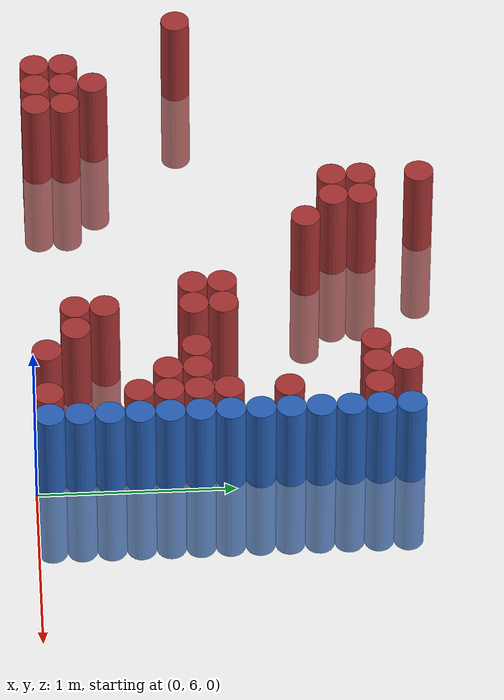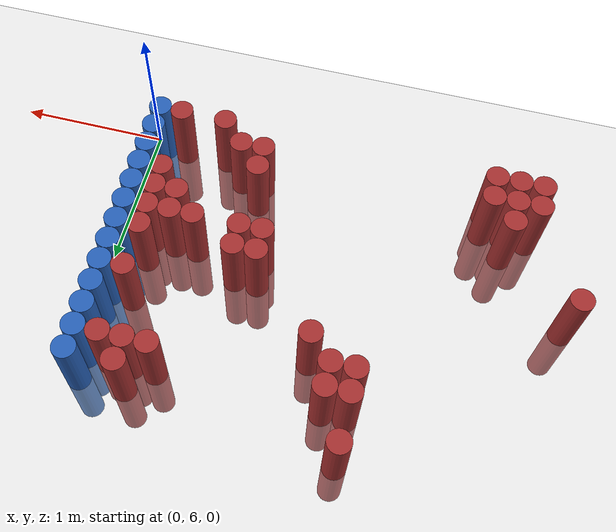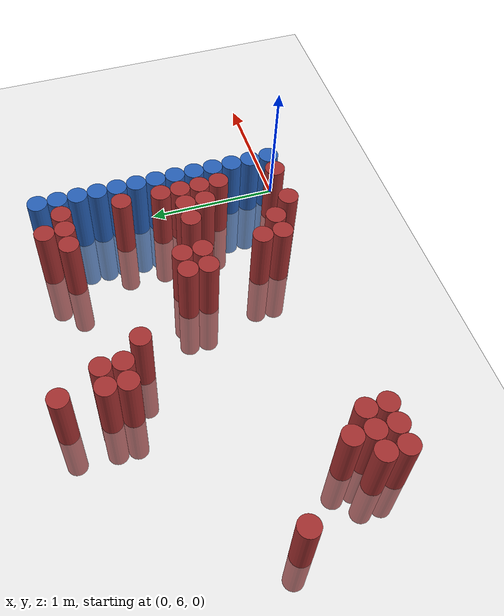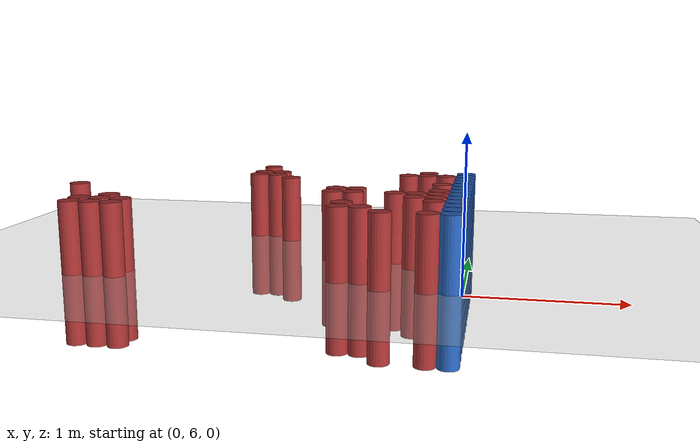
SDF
<sdf version="1.6">
 <world name="default">
  <model name="ground_plane">
   <static>1</static>
   <link name="link">
    <collision name="collision">
     <geometry><plane><normal>0 0 1</normal><size>100 100</size></plane></geometry>
     <surface><friction><ode><mu>100</mu><mu2>50</mu2></ode></friction></surface>
    </collision>
    <visual name="visual">
     <cast_shadows>0</cast_shadows>
     <geometry><plane><normal>0 0 1</normal><size>100 100</size></plane></geometry>
     <material>
      <script><uri>file://media/materials/scripts/gazebo.material</uri><name>Gazebo/Grey</name></script>
     </material>
    </visual>
   </link>
  </model>
  <model name="unit_cylinder_169">
   <static>1</static>
   <pose>-2.925000 6.825000 0.000000 0.000000 0.000000 0.000000</pose>
   <link name="link">
    <inertial>
     <mass>1</mass>
     <inertia><ixx>0.145833</ixx><ixy>0</ixy><ixz>0</ixz><iyy>0.145833</iyy><iyz>0</iyz><izz>0.125</izz></inertia>
    </inertial>
    <collision name="collision">
     <geometry><cylinder><radius>0.075000</radius><length>1</length></cylinder></geometry>
    </collision>
    <visual name="visual">
     <geometry><cylinder><radius>0.075000</radius><length>1</length></cylinder></geometry>
     <material>
      <ambient>0.648000 0.192000 0.192000 1</ambient>
      <diffuse>0.648000 0.192000 0.192000 1</diffuse>
     </material>
     <material>
      <script><name>Gazebo/Grey</name><uri>file://media/materials/scripts/gazebo.material</uri></script>
     </material>
    </visual>
   </link>
  </model>
  <model name="unit_cylinder_174">
   <static>1</static>
   <pose>-2.625000 6.075000 0.000000 0.000000 0.000000 0.000000</pose>
   <link name="link">
    <inertial>
     <mass>1</mass>
     <inertia><ixx>0.145833</ixx><ixy>0</ixy><ixz>0</ixz><iyy>0.145833</iyy><iyz>0</iyz><izz>0.125</izz></inertia>
    </inertial>
    <collision name="collision">
     <geometry><cylinder><radius>0.075000</radius><length>1</length></cylinder></geometry>
    </collision>
    <visual name="visual">
     <geometry><cylinder><radius>0.075000</radius><length>1</length></cylinder></geometry>
     <material>
      <ambient>0.648000 0.192000 0.192000 1</ambient>
      <diffuse>0.648000 0.192000 0.192000 1</diffuse>
     </material>
     <material>
      <script><name>Gazebo/Grey</name><uri>file://media/materials/scripts/gazebo.material</uri></script>
     </material>
    </visual>
   </link>
  </model>
  <model name="unit_cylinder_175">
   <static>1</static>
   <pose>-2.625000 6.225000 0.000000 0.000000 0.000000 0.000000</pose>
   <link name="link">
    <inertial>
     <mass>1</mass>
     <inertia><ixx>0.145833</ixx><ixy>0</ixy><ixz>0</ixz><iyy>0.145833</iyy><iyz>0</iyz><izz>0.125</izz></inertia>
    </inertial>
    <collision name="collision">
     <geometry><cylinder><radius>0.075000</radius><length>1</length></cylinder></geometry>
    </collision>
    <visual name="visual">
     <geometry><cylinder><radius>0.075000</radius><length>1</length></cylinder></geometry>
     <material>
      <ambient>0.648000 0.192000 0.192000 1</ambient>
      <diffuse>0.648000 0.192000 0.192000 1</diffuse>
     </material>
     <material>
      <script><name>Gazebo/Grey</name><uri>file://media/materials/scripts/gazebo.material</uri></script>
     </material>
    </visual>
   </link>
  </model>
  <model name="unit_cylinder_176">
   <static>1</static>
   <pose>-2.475000 6.075000 0.000000 0.000000 0.000000 0.000000</pose>
   <link name="link">
    <inertial>
     <mass>1</mass>
     <inertia><ixx>0.145833</ixx><ixy>0</ixy><ixz>0</ixz><iyy>0.145833</iyy><iyz>0</iyz><izz>0.125</izz></inertia>
    </inertial>
    <collision name="collision">
     <geometry><cylinder><radius>0.075000</radius><length>1</length></cylinder></geometry>
    </collision>
    <visual name="visual">
     <geometry><cylinder><radius>0.075000</radius><length>1</length></cylinder></geometry>
     <material>
      <ambient>0.648000 0.192000 0.192000 1</ambient>
      <diffuse>0.648000 0.192000 0.192000 1</diffuse>
     </material>
     <material>
      <script><name>Gazebo/Grey</name><uri>file://media/materials/scripts/gazebo.material</uri></script>
     </material>
    </visual>
   </link>
  </model>
  <model name="unit_cylinder_177">
   <static>1</static>
   <pose>-2.475000 6.225000 0.000000 0.000000 0.000000 0.000000</pose>
   <link name="link">
    <inertial>
     <mass>1</mass>
     <inertia><ixx>0.145833</ixx><ixy>0</ixy><ixz>0</ixz><iyy>0.145833</iyy><iyz>0</iyz><izz>0.125</izz></inertia>
    </inertial>
    <collision name="collision">
     <geometry><cylinder><radius>0.075000</radius><length>1</length></cylinder></geometry>
    </collision>
    <visual name="visual">
     <geometry><cylinder><radius>0.075000</radius><length>1</length></cylinder></geometry>
     <material>
      <ambient>0.648000 0.192000 0.192000 1</ambient>
      <diffuse>0.648000 0.192000 0.192000 1</diffuse>
     </material>
     <material>
      <script><name>Gazebo/Grey</name><uri>file://media/materials/scripts/gazebo.material</uri></script>
     </material>
    </visual>
   </link>
  </model>
  <model name="unit_cylinder_178">
   <static>1</static>
   <pose>-2.475000 6.375000 0.000000 0.000000 0.000000 0.000000</pose>
   <link name="link">
    <inertial>
     <mass>1</mass>
     <inertia><ixx>0.145833</ixx><ixy>0</ixy><ixz>0</ixz><iyy>0.145833</iyy><iyz>0</iyz><izz>0.125</izz></inertia>
    </inertial>
    <collision name="collision">
     <geometry><cylinder><radius>0.075000</radius><length>1</length></cylinder></geometry>
    </collision>
    <visual name="visual">
     <geometry><cylinder><radius>0.075000</radius><length>1</length></cylinder></geometry>
     <material>
      <ambient>0.648000 0.192000 0.192000 1</ambient>
      <diffuse>0.648000 0.192000 0.192000 1</diffuse>
     </material>
     <material>
      <script><name>Gazebo/Grey</name><uri>file://media/materials/scripts/gazebo.material</uri></script>
     </material>
    </visual>
   </link>
  </model>
  <model name="unit_cylinder_179">
   <static>1</static>
   <pose>-2.325000 6.075000 0.000000 0.000000 0.000000 0.000000</pose>
   <link name="link">
    <inertial>
     <mass>1</mass>
     <inertia><ixx>0.145833</ixx><ixy>0</ixy><ixz>0</ixz><iyy>0.145833</iyy><iyz>0</iyz><izz>0.125</izz></inertia>
    </inertial>
    <collision name="collision">
     <geometry><cylinder><radius>0.075000</radius><length>1</length></cylinder></geometry>
    </collision>
    <visual name="visual">
     <geometry><cylinder><radius>0.075000</radius><length>1</length></cylinder></geometry>
     <material>
      <ambient>0.648000 0.192000 0.192000 1</ambient>
      <diffuse>0.648000 0.192000 0.192000 1</diffuse>
     </material>
     <material>
      <script><name>Gazebo/Grey</name><uri>file://media/materials/scripts/gazebo.material</uri></script>
     </material>
    </visual>
   </link>
  </model>
  <model name="unit_cylinder_180">
   <static>1</static>
   <pose>-2.325000 6.225000 0.000000 0.000000 0.000000 0.000000</pose>
   <link name="link">
    <inertial>
     <mass>1</mass>
     <inertia><ixx>0.145833</ixx><ixy>0</ixy><ixz>0</ixz><iyy>0.145833</iyy><iyz>0</iyz><izz>0.125</izz></inertia>
    </inertial>
    <collision name="collision">
     <geometry><cylinder><radius>0.075000</radius><length>1</length></cylinder></geometry>
    </collision>
    <visual name="visual">
     <geometry><cylinder><radius>0.075000</radius><length>1</length></cylinder></geometry>
     <material>
      <ambient>0.648000 0.192000 0.192000 1</ambient>
      <diffuse>0.648000 0.192000 0.192000 1</diffuse>
     </material>
     <material>
      <script><name>Gazebo/Grey</name><uri>file://media/materials/scripts/gazebo.material</uri></script>
     </material>
    </visual>
   </link>
  </model>
  <model name="unit_cylinder_192">
   <static>1</static>
   <pose>-1.725000 7.575000 0.000000 0.000000 0.000000 0.000000</pose>
   <link name="link">
    <inertial>
     <mass>1</mass>
     <inertia><ixx>0.145833</ixx><ixy>0</ixy><ixz>0</ixz><iyy>0.145833</iyy><iyz>0</iyz><izz>0.125</izz></inertia>
    </inertial>
    <collision name="collision">
     <geometry><cylinder><radius>0.075000</radius><length>1</length></cylinder></geometry>
    </collision>
    <visual name="visual">
     <geometry><cylinder><radius>0.075000</radius><length>1</length></cylinder></geometry>
     <material>
      <ambient>0.648000 0.192000 0.192000 1</ambient>
      <diffuse>0.648000 0.192000 0.192000 1</diffuse>
     </material>
     <material>
      <script><name>Gazebo/Grey</name><uri>file://media/materials/scripts/gazebo.material</uri></script>
     </material>
    </visual>
   </link>
  </model>
  <model name="unit_cylinder_193">
   <static>1</static>
   <pose>-1.725000 7.725000 0.000000 0.000000 0.000000 0.000000</pose>
   <link name="link">
    <inertial>
     <mass>1</mass>
     <inertia><ixx>0.145833</ixx><ixy>0</ixy><ixz>0</ixz><iyy>0.145833</iyy><iyz>0</iyz><izz>0.125</izz></inertia>
    </inertial>
    <collision name="collision">
     <geometry><cylinder><radius>0.075000</radius><length>1</length></cylinder></geometry>
    </collision>
    <visual name="visual">
     <geometry><cylinder><radius>0.075000</radius><length>1</length></cylinder></geometry>
     <material>
      <ambient>0.648000 0.192000 0.192000 1</ambient>
      <diffuse>0.648000 0.192000 0.192000 1</diffuse>
     </material>
     <material>
      <script><name>Gazebo/Grey</name><uri>file://media/materials/scripts/gazebo.material</uri></script>
     </material>
    </visual>
   </link>
  </model>
  <model name="unit_cylinder_194">
   <static>1</static>
   <pose>-1.725000 8.025000 0.000000 0.000000 0.000000 0.000000</pose>
   <link name="link">
    <inertial>
     <mass>1</mass>
     <inertia><ixx>0.145833</ixx><ixy>0</ixy><ixz>0</ixz><iyy>0.145833</iyy><iyz>0</iyz><izz>0.125</izz></inertia>
    </inertial>
    <collision name="collision">
     <geometry><cylinder><radius>0.075000</radius><length>1</length></cylinder></geometry>
    </collision>
    <visual name="visual">
     <geometry><cylinder><radius>0.075000</radius><length>1</length></cylinder></geometry>
     <material>
      <ambient>0.648000 0.192000 0.192000 1</ambient>
      <diffuse>0.648000 0.192000 0.192000 1</diffuse>
     </material>
     <material>
      <script><name>Gazebo/Grey</name><uri>file://media/materials/scripts/gazebo.material</uri></script>
     </material>
    </visual>
   </link>
  </model>
  <model name="unit_cylinder_200">
   <static>1</static>
   <pose>-1.575000 7.575000 0.000000 0.000000 0.000000 0.000000</pose>
   <link name="link">
    <inertial>
     <mass>1</mass>
     <inertia><ixx>0.145833</ixx><ixy>0</ixy><ixz>0</ixz><iyy>0.145833</iyy><iyz>0</iyz><izz>0.125</izz></inertia>
    </inertial>
    <collision name="collision">
     <geometry><cylinder><radius>0.075000</radius><length>1</length></cylinder></geometry>
    </collision>
    <visual name="visual">
     <geometry><cylinder><radius>0.075000</radius><length>1</length></cylinder></geometry>
     <material>
      <ambient>0.648000 0.192000 0.192000 1</ambient>
      <diffuse>0.648000 0.192000 0.192000 1</diffuse>
     </material>
     <material>
      <script><name>Gazebo/Grey</name><uri>file://media/materials/scripts/gazebo.material</uri></script>
     </material>
    </visual>
   </link>
  </model>
  <model name="unit_cylinder_201">
   <static>1</static>
   <pose>-1.575000 7.725000 0.000000 0.000000 0.000000 0.000000</pose>
   <link name="link">
    <inertial>
     <mass>1</mass>
     <inertia><ixx>0.145833</ixx><ixy>0</ixy><ixz>0</ixz><iyy>0.145833</iyy><iyz>0</iyz><izz>0.125</izz></inertia>
    </inertial>
    <collision name="collision">
     <geometry><cylinder><radius>0.075000</radius><length>1</length></cylinder></geometry>
    </collision>
    <visual name="visual">
     <geometry><cylinder><radius>0.075000</radius><length>1</length></cylinder></geometry>
     <material>
      <ambient>0.648000 0.192000 0.192000 1</ambient>
      <diffuse>0.648000 0.192000 0.192000 1</diffuse>
     </material>
     <material>
      <script><name>Gazebo/Grey</name><uri>file://media/materials/scripts/gazebo.material</uri></script>
     </material>
    </visual>
   </link>
  </model>
  <model name="unit_cylinder_205">
   <static>1</static>
   <pose>-1.425000 7.425000 0.000000 0.000000 0.000000 0.000000</pose>
   <link name="link">
    <inertial>
     <mass>1</mass>
     <inertia><ixx>0.145833</ixx><ixy>0</ixy><ixz>0</ixz><iyy>0.145833</iyy><iyz>0</iyz><izz>0.125</izz></inertia>
    </inertial>
    <collision name="collision">
     <geometry><cylinder><radius>0.075000</radius><length>1</length></cylinder></geometry>
    </collision>
    <visual name="visual">
     <geometry><cylinder><radius>0.075000</radius><length>1</length></cylinder></geometry>
     <material>
      <ambient>0.648000 0.192000 0.192000 1</ambient>
      <diffuse>0.648000 0.192000 0.192000 1</diffuse>
     </material>
     <material>
      <script><name>Gazebo/Grey</name><uri>file://media/materials/scripts/gazebo.material</uri></script>
     </material>
    </visual>
   </link>
  </model>
  <model name="unit_cylinder_212">
   <static>1</static>
   <pose>-0.975000 6.825000 0.000000 0.000000 0.000000 0.000000</pose>
   <link name="link">
    <inertial>
     <mass>1</mass>
     <inertia><ixx>0.145833</ixx><ixy>0</ixy><ixz>0</ixz><iyy>0.145833</iyy><iyz>0</iyz><izz>0.125</izz></inertia>
    </inertial>
    <collision name="collision">
     <geometry><cylinder><radius>0.075000</radius><length>1</length></cylinder></geometry>
    </collision>
    <visual name="visual">
     <geometry><cylinder><radius>0.075000</radius><length>1</length></cylinder></geometry>
     <material>
      <ambient>0.648000 0.192000 0.192000 1</ambient>
      <diffuse>0.648000 0.192000 0.192000 1</diffuse>
     </material>
     <material>
      <script><name>Gazebo/Grey</name><uri>file://media/materials/scripts/gazebo.material</uri></script>
     </material>
    </visual>
   </link>
  </model>
  <model name="unit_cylinder_213">
   <static>1</static>
   <pose>-0.975000 6.975000 0.000000 0.000000 0.000000 0.000000</pose>
   <link name="link">
    <inertial>
     <mass>1</mass>
     <inertia><ixx>0.145833</ixx><ixy>0</ixy><ixz>0</ixz><iyy>0.145833</iyy><iyz>0</iyz><izz>0.125</izz></inertia>
    </inertial>
    <collision name="collision">
     <geometry><cylinder><radius>0.075000</radius><length>1</length></cylinder></geometry>
    </collision>
    <visual name="visual">
     <geometry><cylinder><radius>0.075000</radius><length>1</length></cylinder></geometry>
     <material>
      <ambient>0.648000 0.192000 0.192000 1</ambient>
      <diffuse>0.648000 0.192000 0.192000 1</diffuse>
     </material>
     <material>
      <script><name>Gazebo/Grey</name><uri>file://media/materials/scripts/gazebo.material</uri></script>
     </material>
    </visual>
   </link>
  </model>
  <model name="unit_cylinder_215">
   <static>1</static>
   <pose>-0.825000 6.225000 0.000000 0.000000 0.000000 0.000000</pose>
   <link name="link">
    <inertial>
     <mass>1</mass>
     <inertia><ixx>0.145833</ixx><ixy>0</ixy><ixz>0</ixz><iyy>0.145833</iyy><iyz>0</iyz><izz>0.125</izz></inertia>
    </inertial>
    <collision name="collision">
     <geometry><cylinder><radius>0.075000</radius><length>1</length></cylinder></geometry>
    </collision>
    <visual name="visual">
     <geometry><cylinder><radius>0.075000</radius><length>1</length></cylinder></geometry>
     <material>
      <ambient>0.648000 0.192000 0.192000 1</ambient>
      <diffuse>0.648000 0.192000 0.192000 1</diffuse>
     </material>
     <material>
      <script><name>Gazebo/Grey</name><uri>file://media/materials/scripts/gazebo.material</uri></script>
     </material>
    </visual>
   </link>
  </model>
  <model name="unit_cylinder_216">
   <static>1</static>
   <pose>-0.825000 6.375000 0.000000 0.000000 0.000000 0.000000</pose>
   <link name="link">
    <inertial>
     <mass>1</mass>
     <inertia><ixx>0.145833</ixx><ixy>0</ixy><ixz>0</ixz><iyy>0.145833</iyy><iyz>0</iyz><izz>0.125</izz></inertia>
    </inertial>
    <collision name="collision">
     <geometry><cylinder><radius>0.075000</radius><length>1</length></cylinder></geometry>
    </collision>
    <visual name="visual">
     <geometry><cylinder><radius>0.075000</radius><length>1</length></cylinder></geometry>
     <material>
      <ambient>0.648000 0.192000 0.192000 1</ambient>
      <diffuse>0.648000 0.192000 0.192000 1</diffuse>
     </material>
     <material>
      <script><name>Gazebo/Grey</name><uri>file://media/materials/scripts/gazebo.material</uri></script>
     </material>
    </visual>
   </link>
  </model>
  <model name="unit_cylinder_217">
   <static>1</static>
   <pose>-0.825000 6.825000 0.000000 0.000000 0.000000 0.000000</pose>
   <link name="link">
    <inertial>
     <mass>1</mass>
     <inertia><ixx>0.145833</ixx><ixy>0</ixy><ixz>0</ixz><iyy>0.145833</iyy><iyz>0</iyz><izz>0.125</izz></inertia>
    </inertial>
    <collision name="collision">
     <geometry><cylinder><radius>0.075000</radius><length>1</length></cylinder></geometry>
    </collision>
    <visual name="visual">
     <geometry><cylinder><radius>0.075000</radius><length>1</length></cylinder></geometry>
     <material>
      <ambient>0.648000 0.192000 0.192000 1</ambient>
      <diffuse>0.648000 0.192000 0.192000 1</diffuse>
     </material>
     <material>
      <script><name>Gazebo/Grey</name><uri>file://media/materials/scripts/gazebo.material</uri></script>
     </material>
    </visual>
   </link>
  </model>
  <model name="unit_cylinder_218">
   <static>1</static>
   <pose>-0.825000 6.975000 0.000000 0.000000 0.000000 0.000000</pose>
   <link name="link">
    <inertial>
     <mass>1</mass>
     <inertia><ixx>0.145833</ixx><ixy>0</ixy><ixz>0</ixz><iyy>0.145833</iyy><iyz>0</iyz><izz>0.125</izz></inertia>
    </inertial>
    <collision name="collision">
     <geometry><cylinder><radius>0.075000</radius><length>1</length></cylinder></geometry>
    </collision>
    <visual name="visual">
     <geometry><cylinder><radius>0.075000</radius><length>1</length></cylinder></geometry>
     <material>
      <ambient>0.648000 0.192000 0.192000 1</ambient>
      <diffuse>0.648000 0.192000 0.192000 1</diffuse>
     </material>
     <material>
      <script><name>Gazebo/Grey</name><uri>file://media/materials/scripts/gazebo.material</uri></script>
     </material>
    </visual>
   </link>
  </model>
  <model name="unit_cylinder_223">
   <static>1</static>
   <pose>-0.675000 6.225000 0.000000 0.000000 0.000000 0.000000</pose>
   <link name="link">
    <inertial>
     <mass>1</mass>
     <inertia><ixx>0.145833</ixx><ixy>0</ixy><ixz>0</ixz><iyy>0.145833</iyy><iyz>0</iyz><izz>0.125</izz></inertia>
    </inertial>
    <collision name="collision">
     <geometry><cylinder><radius>0.075000</radius><length>1</length></cylinder></geometry>
    </collision>
    <visual name="visual">
     <geometry><cylinder><radius>0.075000</radius><length>1</length></cylinder></geometry>
     <material>
      <ambient>0.648000 0.192000 0.192000 1</ambient>
      <diffuse>0.648000 0.192000 0.192000 1</diffuse>
     </material>
     <material>
      <script><name>Gazebo/Grey</name><uri>file://media/materials/scripts/gazebo.material</uri></script>
     </material>
    </visual>
   </link>
  </model>
  <model name="unit_cylinder_229">
   <static>1</static>
   <pose>-0.525000 6.075000 0.000000 0.000000 0.000000 0.000000</pose>
   <link name="link">
    <inertial>
     <mass>1</mass>
     <inertia><ixx>0.145833</ixx><ixy>0</ixy><ixz>0</ixz><iyy>0.145833</iyy><iyz>0</iyz><izz>0.125</izz></inertia>
    </inertial>
    <collision name="collision">
     <geometry><cylinder><radius>0.075000</radius><length>1</length></cylinder></geometry>
    </collision>
    <visual name="visual">
     <geometry><cylinder><radius>0.075000</radius><length>1</length></cylinder></geometry>
     <material>
      <ambient>0.648000 0.192000 0.192000 1</ambient>
      <diffuse>0.648000 0.192000 0.192000 1</diffuse>
     </material>
     <material>
      <script><name>Gazebo/Grey</name><uri>file://media/materials/scripts/gazebo.material</uri></script>
     </material>
    </visual>
   </link>
  </model>
  <model name="unit_cylinder_230">
   <static>1</static>
   <pose>-0.525000 6.825000 0.000000 0.000000 0.000000 0.000000</pose>
   <link name="link">
    <inertial>
     <mass>1</mass>
     <inertia><ixx>0.145833</ixx><ixy>0</ixy><ixz>0</ixz><iyy>0.145833</iyy><iyz>0</iyz><izz>0.125</izz></inertia>
    </inertial>
    <collision name="collision">
     <geometry><cylinder><radius>0.075000</radius><length>1</length></cylinder></geometry>
    </collision>
    <visual name="visual">
     <geometry><cylinder><radius>0.075000</radius><length>1</length></cylinder></geometry>
     <material>
      <ambient>0.648000 0.192000 0.192000 1</ambient>
      <diffuse>0.648000 0.192000 0.192000 1</diffuse>
     </material>
     <material>
      <script><name>Gazebo/Grey</name><uri>file://media/materials/scripts/gazebo.material</uri></script>
     </material>
    </visual>
   </link>
  </model>
  <model name="unit_cylinder_231">
   <static>1</static>
   <pose>-0.525000 7.725000 0.000000 0.000000 0.000000 0.000000</pose>
   <link name="link">
    <inertial>
     <mass>1</mass>
     <inertia><ixx>0.145833</ixx><ixy>0</ixy><ixz>0</ixz><iyy>0.145833</iyy><iyz>0</iyz><izz>0.125</izz></inertia>
    </inertial>
    <collision name="collision">
     <geometry><cylinder><radius>0.075000</radius><length>1</length></cylinder></geometry>
    </collision>
    <visual name="visual">
     <geometry><cylinder><radius>0.075000</radius><length>1</length></cylinder></geometry>
     <material>
      <ambient>0.648000 0.192000 0.192000 1</ambient>
      <diffuse>0.648000 0.192000 0.192000 1</diffuse>
     </material>
     <material>
      <script><name>Gazebo/Grey</name><uri>file://media/materials/scripts/gazebo.material</uri></script>
     </material>
    </visual>
   </link>
  </model>
  <model name="unit_cylinder_237">
   <static>1</static>
   <pose>-0.375000 6.675000 0.000000 0.000000 0.000000 0.000000</pose>
   <link name="link">
    <inertial>
     <mass>1</mass>
     <inertia><ixx>0.145833</ixx><ixy>0</ixy><ixz>0</ixz><iyy>0.145833</iyy><iyz>0</iyz><izz>0.125</izz></inertia>
    </inertial>
    <collision name="collision">
     <geometry><cylinder><radius>0.075000</radius><length>1</length></cylinder></geometry>
    </collision>
    <visual name="visual">
     <geometry><cylinder><radius>0.075000</radius><length>1</length></cylinder></geometry>
     <material>
      <ambient>0.648000 0.192000 0.192000 1</ambient>
      <diffuse>0.648000 0.192000 0.192000 1</diffuse>
     </material>
     <material>
      <script><name>Gazebo/Grey</name><uri>file://media/materials/scripts/gazebo.material</uri></script>
     </material>
    </visual>
   </link>
  </model>
  <model name="unit_cylinder_238">
   <static>1</static>
   <pose>-0.375000 6.825000 0.000000 0.000000 0.000000 0.000000</pose>
   <link name="link">
    <inertial>
     <mass>1</mass>
     <inertia><ixx>0.145833</ixx><ixy>0</ixy><ixz>0</ixz><iyy>0.145833</iyy><iyz>0</iyz><izz>0.125</izz></inertia>
    </inertial>
    <collision name="collision">
     <geometry><cylinder><radius>0.075000</radius><length>1</length></cylinder></geometry>
    </collision>
    <visual name="visual">
     <geometry><cylinder><radius>0.075000</radius><length>1</length></cylinder></geometry>
     <material>
      <ambient>0.648000 0.192000 0.192000 1</ambient>
      <diffuse>0.648000 0.192000 0.192000 1</diffuse>
     </material>
     <material>
      <script><name>Gazebo/Grey</name><uri>file://media/materials/scripts/gazebo.material</uri></script>
     </material>
    </visual>
   </link>
  </model>
  <model name="unit_cylinder_239">
   <static>1</static>
   <pose>-0.375000 7.725000 0.000000 0.000000 0.000000 0.000000</pose>
   <link name="link">
    <inertial>
     <mass>1</mass>
     <inertia><ixx>0.145833</ixx><ixy>0</ixy><ixz>0</ixz><iyy>0.145833</iyy><iyz>0</iyz><izz>0.125</izz></inertia>
    </inertial>
    <collision name="collision">
     <geometry><cylinder><radius>0.075000</radius><length>1</length></cylinder></geometry>
    </collision>
    <visual name="visual">
     <geometry><cylinder><radius>0.075000</radius><length>1</length></cylinder></geometry>
     <material>
      <ambient>0.648000 0.192000 0.192000 1</ambient>
      <diffuse>0.648000 0.192000 0.192000 1</diffuse>
     </material>
     <material>
      <script><name>Gazebo/Grey</name><uri>file://media/materials/scripts/gazebo.material</uri></script>
     </material>
    </visual>
   </link>
  </model>
  <model name="unit_cylinder_240">
   <static>1</static>
   <pose>-0.375000 7.875000 0.000000 0.000000 0.000000 0.000000</pose>
   <link name="link">
    <inertial>
     <mass>1</mass>
     <inertia><ixx>0.145833</ixx><ixy>0</ixy><ixz>0</ixz><iyy>0.145833</iyy><iyz>0</iyz><izz>0.125</izz></inertia>
    </inertial>
    <collision name="collision">
     <geometry><cylinder><radius>0.075000</radius><length>1</length></cylinder></geometry>
    </collision>
    <visual name="visual">
     <geometry><cylinder><radius>0.075000</radius><length>1</length></cylinder></geometry>
     <material>
      <ambient>0.648000 0.192000 0.192000 1</ambient>
      <diffuse>0.648000 0.192000 0.192000 1</diffuse>
     </material>
     <material>
      <script><name>Gazebo/Grey</name><uri>file://media/materials/scripts/gazebo.material</uri></script>
     </material>
    </visual>
   </link>
  </model>
  <model name="unit_cylinder_247">
   <static>1</static>
   <pose>-0.225000 6.075000 0.000000 0.000000 0.000000 0.000000</pose>
   <link name="link">
    <inertial>
     <mass>1</mass>
     <inertia><ixx>0.145833</ixx><ixy>0</ixy><ixz>0</ixz><iyy>0.145833</iyy><iyz>0</iyz><izz>0.125</izz></inertia>
    </inertial>
    <collision name="collision">
     <geometry><cylinder><radius>0.075000</radius><length>1</length></cylinder></geometry>
    </collision>
    <visual name="visual">
     <geometry><cylinder><radius>0.075000</radius><length>1</length></cylinder></geometry>
     <material>
      <ambient>0.648000 0.192000 0.192000 1</ambient>
      <diffuse>0.648000 0.192000 0.192000 1</diffuse>
     </material>
     <material>
      <script><name>Gazebo/Grey</name><uri>file://media/materials/scripts/gazebo.material</uri></script>
     </material>
    </visual>
   </link>
  </model>
  <model name="unit_cylinder_248">
   <static>1</static>
   <pose>-0.225000 6.525000 0.000000 0.000000 0.000000 0.000000</pose>
   <link name="link">
    <inertial>
     <mass>1</mass>
     <inertia><ixx>0.145833</ixx><ixy>0</ixy><ixz>0</ixz><iyy>0.145833</iyy><iyz>0</iyz><izz>0.125</izz></inertia>
    </inertial>
    <collision name="collision">
     <geometry><cylinder><radius>0.075000</radius><length>1</length></cylinder></geometry>
    </collision>
    <visual name="visual">
     <geometry><cylinder><radius>0.075000</radius><length>1</length></cylinder></geometry>
     <material>
      <ambient>0.648000 0.192000 0.192000 1</ambient>
      <diffuse>0.648000 0.192000 0.192000 1</diffuse>
     </material>
     <material>
      <script><name>Gazebo/Grey</name><uri>file://media/materials/scripts/gazebo.material</uri></script>
     </material>
    </visual>
   </link>
  </model>
  <model name="unit_cylinder_249">
   <static>1</static>
   <pose>-0.225000 6.675000 0.000000 0.000000 0.000000 0.000000</pose>
   <link name="link">
    <inertial>
     <mass>1</mass>
     <inertia><ixx>0.145833</ixx><ixy>0</ixy><ixz>0</ixz><iyy>0.145833</iyy><iyz>0</iyz><izz>0.125</izz></inertia>
    </inertial>
    <collision name="collision">
     <geometry><cylinder><radius>0.075000</radius><length>1</length></cylinder></geometry>
    </collision>
    <visual name="visual">
     <geometry><cylinder><radius>0.075000</radius><length>1</length></cylinder></geometry>
     <material>
      <ambient>0.648000 0.192000 0.192000 1</ambient>
      <diffuse>0.648000 0.192000 0.192000 1</diffuse>
     </material>
     <material>
      <script><name>Gazebo/Grey</name><uri>file://media/materials/scripts/gazebo.material</uri></script>
     </material>
    </visual>
   </link>
  </model>
  <model name="unit_cylinder_250">
   <static>1</static>
   <pose>-0.225000 6.825000 0.000000 0.000000 0.000000 0.000000</pose>
   <link name="link">
    <inertial>
     <mass>1</mass>
     <inertia><ixx>0.145833</ixx><ixy>0</ixy><ixz>0</ixz><iyy>0.145833</iyy><iyz>0</iyz><izz>0.125</izz></inertia>
    </inertial>
    <collision name="collision">
     <geometry><cylinder><radius>0.075000</radius><length>1</length></cylinder></geometry>
    </collision>
    <visual name="visual">
     <geometry><cylinder><radius>0.075000</radius><length>1</length></cylinder></geometry>
     <material>
      <ambient>0.648000 0.192000 0.192000 1</ambient>
      <diffuse>0.648000 0.192000 0.192000 1</diffuse>
     </material>
     <material>
      <script><name>Gazebo/Grey</name><uri>file://media/materials/scripts/gazebo.material</uri></script>
     </material>
    </visual>
   </link>
  </model>
  <model name="unit_cylinder_251">
   <static>1</static>
   <pose>-0.225000 6.975000 0.000000 0.000000 0.000000 0.000000</pose>
   <link name="link">
    <inertial>
     <mass>1</mass>
     <inertia><ixx>0.145833</ixx><ixy>0</ixy><ixz>0</ixz><iyy>0.145833</iyy><iyz>0</iyz><izz>0.125</izz></inertia>
    </inertial>
    <collision name="collision">
     <geometry><cylinder><radius>0.075000</radius><length>1</length></cylinder></geometry>
    </collision>
    <visual name="visual">
     <geometry><cylinder><radius>0.075000</radius><length>1</length></cylinder></geometry>
     <material>
      <ambient>0.648000 0.192000 0.192000 1</ambient>
      <diffuse>0.648000 0.192000 0.192000 1</diffuse>
     </material>
     <material>
      <script><name>Gazebo/Grey</name><uri>file://media/materials/scripts/gazebo.material</uri></script>
     </material>
    </visual>
   </link>
  </model>
  <model name="unit_cylinder_252">
   <static>1</static>
   <pose>-0.225000 7.275000 0.000000 0.000000 0.000000 0.000000</pose>
   <link name="link">
    <inertial>
     <mass>1</mass>
     <inertia><ixx>0.145833</ixx><ixy>0</ixy><ixz>0</ixz><iyy>0.145833</iyy><iyz>0</iyz><izz>0.125</izz></inertia>
    </inertial>
    <collision name="collision">
     <geometry><cylinder><radius>0.075000</radius><length>1</length></cylinder></geometry>
    </collision>
    <visual name="visual">
     <geometry><cylinder><radius>0.075000</radius><length>1</length></cylinder></geometry>
     <material>
      <ambient>0.648000 0.192000 0.192000 1</ambient>
      <diffuse>0.648000 0.192000 0.192000 1</diffuse>
     </material>
     <material>
      <script><name>Gazebo/Grey</name><uri>file://media/materials/scripts/gazebo.material</uri></script>
     </material>
    </visual>
   </link>
  </model>
  <model name="unit_cylinder_253">
   <static>1</static>
   <pose>-0.225000 7.725000 0.000000 0.000000 0.000000 0.000000</pose>
   <link name="link">
    <inertial>
     <mass>1</mass>
     <inertia><ixx>0.145833</ixx><ixy>0</ixy><ixz>0</ixz><iyy>0.145833</iyy><iyz>0</iyz><izz>0.125</izz></inertia>
    </inertial>
    <collision name="collision">
     <geometry><cylinder><radius>0.075000</radius><length>1</length></cylinder></geometry>
    </collision>
    <visual name="visual">
     <geometry><cylinder><radius>0.075000</radius><length>1</length></cylinder></geometry>
     <material>
      <ambient>0.648000 0.192000 0.192000 1</ambient>
      <diffuse>0.648000 0.192000 0.192000 1</diffuse>
     </material>
     <material>
      <script><name>Gazebo/Grey</name><uri>file://media/materials/scripts/gazebo.material</uri></script>
     </material>
    </visual>
   </link>
  </model>
  <model name="unit_cylinder_265">
   <static>1</static>
   <pose>-0.075000 6.075000 0.000000 0.000000 0.000000 0.000000</pose>
   <link name="link">
    <inertial>
     <mass>1</mass>
     <inertia><ixx>0.145833</ixx><ixy>0</ixy><ixz>0</ixz><iyy>0.145833</iyy><iyz>0</iyz><izz>0.125</izz></inertia>
    </inertial>
    <collision name="collision">
     <geometry><cylinder><radius>0.075000</radius><length>1</length></cylinder></geometry>
    </collision>
    <visual name="visual">
     <geometry><cylinder><radius>0.075000</radius><length>1</length></cylinder></geometry>
     <material>
      <ambient>0.152000 0.379000 0.720000 1</ambient>
      <diffuse>0.152000 0.379000 0.720000 1</diffuse>
     </material>
     <material>
      <script><name>Gazebo/Grey</name><uri>file://media/materials/scripts/gazebo.material</uri></script>
     </material>
    </visual>
   </link>
  </model>
  <model name="unit_cylinder_266">
   <static>1</static>
   <pose>-0.075000 6.225000 0.000000 0.000000 0.000000 0.000000</pose>
   <link name="link">
    <inertial>
     <mass>1</mass>
     <inertia><ixx>0.145833</ixx><ixy>0</ixy><ixz>0</ixz><iyy>0.145833</iyy><iyz>0</iyz><izz>0.125</izz></inertia>
    </inertial>
    <collision name="collision">
     <geometry><cylinder><radius>0.075000</radius><length>1</length></cylinder></geometry>
    </collision>
    <visual name="visual">
     <geometry><cylinder><radius>0.075000</radius><length>1</length></cylinder></geometry>
     <material>
      <ambient>0.152000 0.379000 0.720000 1</ambient>
      <diffuse>0.152000 0.379000 0.720000 1</diffuse>
     </material>
     <material>
      <script><name>Gazebo/Grey</name><uri>file://media/materials/scripts/gazebo.material</uri></script>
     </material>
    </visual>
   </link>
  </model>
  <model name="unit_cylinder_267">
   <static>1</static>
   <pose>-0.075000 6.375000 0.000000 0.000000 0.000000 0.000000</pose>
   <link name="link">
    <inertial>
     <mass>1</mass>
     <inertia><ixx>0.145833</ixx><ixy>0</ixy><ixz>0</ixz><iyy>0.145833</iyy><iyz>0</iyz><izz>0.125</izz></inertia>
    </inertial>
    <collision name="collision">
     <geometry><cylinder><radius>0.075000</radius><length>1</length></cylinder></geometry>
    </collision>
    <visual name="visual">
     <geometry><cylinder><radius>0.075000</radius><length>1</length></cylinder></geometry>
     <material>
      <ambient>0.152000 0.379000 0.720000 1</ambient>
      <diffuse>0.152000 0.379000 0.720000 1</diffuse>
     </material>
     <material>
      <script><name>Gazebo/Grey</name><uri>file://media/materials/scripts/gazebo.material</uri></script>
     </material>
    </visual>
   </link>
  </model>
  <model name="unit_cylinder_268">
   <static>1</static>
   <pose>-0.075000 6.525000 0.000000 0.000000 0.000000 0.000000</pose>
   <link name="link">
    <inertial>
     <mass>1</mass>
     <inertia><ixx>0.145833</ixx><ixy>0</ixy><ixz>0</ixz><iyy>0.145833</iyy><iyz>0</iyz><izz>0.125</izz></inertia>
    </inertial>
    <collision name="collision">
     <geometry><cylinder><radius>0.075000</radius><length>1</length></cylinder></geometry>
    </collision>
    <visual name="visual">
     <geometry><cylinder><radius>0.075000</radius><length>1</length></cylinder></geometry>
     <material>
      <ambient>0.152000 0.379000 0.720000 1</ambient>
      <diffuse>0.152000 0.379000 0.720000 1</diffuse>
     </material>
     <material>
      <script><name>Gazebo/Grey</name><uri>file://media/materials/scripts/gazebo.material</uri></script>
     </material>
    </visual>
   </link>
  </model>
  <model name="unit_cylinder_269">
   <static>1</static>
   <pose>-0.075000 6.675000 0.000000 0.000000 0.000000 0.000000</pose>
   <link name="link">
    <inertial>
     <mass>1</mass>
     <inertia><ixx>0.145833</ixx><ixy>0</ixy><ixz>0</ixz><iyy>0.145833</iyy><iyz>0</iyz><izz>0.125</izz></inertia>
    </inertial>
    <collision name="collision">
     <geometry><cylinder><radius>0.075000</radius><length>1</length></cylinder></geometry>
    </collision>
    <visual name="visual">
     <geometry><cylinder><radius>0.075000</radius><length>1</length></cylinder></geometry>
     <material>
      <ambient>0.152000 0.379000 0.720000 1</ambient>
      <diffuse>0.152000 0.379000 0.720000 1</diffuse>
     </material>
     <material>
      <script><name>Gazebo/Grey</name><uri>file://media/materials/scripts/gazebo.material</uri></script>
     </material>
    </visual>
   </link>
  </model>
  <model name="unit_cylinder_270">
   <static>1</static>
   <pose>-0.075000 6.825000 0.000000 0.000000 0.000000 0.000000</pose>
   <link name="link">
    <inertial>
     <mass>1</mass>
     <inertia><ixx>0.145833</ixx><ixy>0</ixy><ixz>0</ixz><iyy>0.145833</iyy><iyz>0</iyz><izz>0.125</izz></inertia>
    </inertial>
    <collision name="collision">
     <geometry><cylinder><radius>0.075000</radius><length>1</length></cylinder></geometry>
    </collision>
    <visual name="visual">
     <geometry><cylinder><radius>0.075000</radius><length>1</length></cylinder></geometry>
     <material>
      <ambient>0.152000 0.379000 0.720000 1</ambient>
      <diffuse>0.152000 0.379000 0.720000 1</diffuse>
     </material>
     <material>
      <script><name>Gazebo/Grey</name><uri>file://media/materials/scripts/gazebo.material</uri></script>
     </material>
    </visual>
   </link>
  </model>
  <model name="unit_cylinder_271">
   <static>1</static>
   <pose>-0.075000 6.975000 0.000000 0.000000 0.000000 0.000000</pose>
   <link name="link">
    <inertial>
     <mass>1</mass>
     <inertia><ixx>0.145833</ixx><ixy>0</ixy><ixz>0</ixz><iyy>0.145833</iyy><iyz>0</iyz><izz>0.125</izz></inertia>
    </inertial>
    <collision name="collision">
     <geometry><cylinder><radius>0.075000</radius><length>1</length></cylinder></geometry>
    </collision>
    <visual name="visual">
     <geometry><cylinder><radius>0.075000</radius><length>1</length></cylinder></geometry>
     <material>
      <ambient>0.152000 0.379000 0.720000 1</ambient>
      <diffuse>0.152000 0.379000 0.720000 1</diffuse>
     </material>
     <material>
      <script><name>Gazebo/Grey</name><uri>file://media/materials/scripts/gazebo.material</uri></script>
     </material>
    </visual>
   </link>
  </model>
  <model name="unit_cylinder_272">
   <static>1</static>
   <pose>-0.075000 7.125000 0.000000 0.000000 0.000000 0.000000</pose>
   <link name="link">
    <inertial>
     <mass>1</mass>
     <inertia><ixx>0.145833</ixx><ixy>0</ixy><ixz>0</ixz><iyy>0.145833</iyy><iyz>0</iyz><izz>0.125</izz></inertia>
    </inertial>
    <collision name="collision">
     <geometry><cylinder><radius>0.075000</radius><length>1</length></cylinder></geometry>
    </collision>
    <visual name="visual">
     <geometry><cylinder><radius>0.075000</radius><length>1</length></cylinder></geometry>
     <material>
      <ambient>0.152000 0.379000 0.720000 1</ambient>
      <diffuse>0.152000 0.379000 0.720000 1</diffuse>
     </material>
     <material>
      <script><name>Gazebo/Grey</name><uri>file://media/materials/scripts/gazebo.material</uri></script>
     </material>
    </visual>
   </link>
  </model>
  <model name="unit_cylinder_273">
   <static>1</static>
   <pose>-0.075000 7.275000 0.000000 0.000000 0.000000 0.000000</pose>
   <link name="link">
    <inertial>
     <mass>1</mass>
     <inertia><ixx>0.145833</ixx><ixy>0</ixy><ixz>0</ixz><iyy>0.145833</iyy><iyz>0</iyz><izz>0.125</izz></inertia>
    </inertial>
    <collision name="collision">
     <geometry><cylinder><radius>0.075000</radius><length>1</length></cylinder></geometry>
    </collision>
    <visual name="visual">
     <geometry><cylinder><radius>0.075000</radius><length>1</length></cylinder></geometry>
     <material>
      <ambient>0.152000 0.379000 0.720000 1</ambient>
      <diffuse>0.152000 0.379000 0.720000 1</diffuse>
     </material>
     <material>
      <script><name>Gazebo/Grey</name><uri>file://media/materials/scripts/gazebo.material</uri></script>
     </material>
    </visual>
   </link>
  </model>
  <model name="unit_cylinder_274">
   <static>1</static>
   <pose>-0.075000 7.425000 0.000000 0.000000 0.000000 0.000000</pose>
   <link name="link">
    <inertial>
     <mass>1</mass>
     <inertia><ixx>0.145833</ixx><ixy>0</ixy><ixz>0</ixz><iyy>0.145833</iyy><iyz>0</iyz><izz>0.125</izz></inertia>
    </inertial>
    <collision name="collision">
     <geometry><cylinder><radius>0.075000</radius><length>1</length></cylinder></geometry>
    </collision>
    <visual name="visual">
     <geometry><cylinder><radius>0.075000</radius><length>1</length></cylinder></geometry>
     <material>
      <ambient>0.152000 0.379000 0.720000 1</ambient>
      <diffuse>0.152000 0.379000 0.720000 1</diffuse>
     </material>
     <material>
      <script><name>Gazebo/Grey</name><uri>file://media/materials/scripts/gazebo.material</uri></script>
     </material>
    </visual>
   </link>
  </model>
  <model name="unit_cylinder_275">
   <static>1</static>
   <pose>-0.075000 7.575000 0.000000 0.000000 0.000000 0.000000</pose>
   <link name="link">
    <inertial>
     <mass>1</mass>
     <inertia><ixx>0.145833</ixx><ixy>0</ixy><ixz>0</ixz><iyy>0.145833</iyy><iyz>0</iyz><izz>0.125</izz></inertia>
    </inertial>
    <collision name="collision">
     <geometry><cylinder><radius>0.075000</radius><length>1</length></cylinder></geometry>
    </collision>
    <visual name="visual">
     <geometry><cylinder><radius>0.075000</radius><length>1</length></cylinder></geometry>
     <material>
      <ambient>0.152000 0.379000 0.720000 1</ambient>
      <diffuse>0.152000 0.379000 0.720000 1</diffuse>
     </material>
     <material>
      <script><name>Gazebo/Grey</name><uri>file://media/materials/scripts/gazebo.material</uri></script>
     </material>
    </visual>
   </link>
  </model>
  <model name="unit_cylinder_276">
   <static>1</static>
   <pose>-0.075000 7.725000 0.000000 0.000000 0.000000 0.000000</pose>
   <link name="link">
    <inertial>
     <mass>1</mass>
     <inertia><ixx>0.145833</ixx><ixy>0</ixy><ixz>0</ixz><iyy>0.145833</iyy><iyz>0</iyz><izz>0.125</izz></inertia>
    </inertial>
    <collision name="collision">
     <geometry><cylinder><radius>0.075000</radius><length>1</length></cylinder></geometry>
    </collision>
    <visual name="visual">
     <geometry><cylinder><radius>0.075000</radius><length>1</length></cylinder></geometry>
     <material>
      <ambient>0.152000 0.379000 0.720000 1</ambient>
      <diffuse>0.152000 0.379000 0.720000 1</diffuse>
     </material>
     <material>
      <script><name>Gazebo/Grey</name><uri>file://media/materials/scripts/gazebo.material</uri></script>
     </material>
    </visual>
   </link>
  </model>
  <model name="unit_cylinder_277">
   <static>1</static>
   <pose>-0.075000 7.875000 0.000000 0.000000 0.000000 0.000000</pose>
   <link name="link">
    <inertial>
     <mass>1</mass>
     <inertia><ixx>0.145833</ixx><ixy>0</ixy><ixz>0</ixz><iyy>0.145833</iyy><iyz>0</iyz><izz>0.125</izz></inertia>
    </inertial>
    <collision name="collision">
     <geometry><cylinder><radius>0.075000</radius><length>1</length></cylinder></geometry>
    </collision>
    <visual name="visual">
     <geometry><cylinder><radius>0.075000</radius><length>1</length></cylinder></geometry>
     <material>
      <ambient>0.152000 0.379000 0.720000 1</ambient>
      <diffuse>0.152000 0.379000 0.720000 1</diffuse>
     </material>
     <material>
      <script><name>Gazebo/Grey</name><uri>file://media/materials/scripts/gazebo.material</uri></script>
     </material>
    </visual>
   </link>
  </model>
 </world>
</sdf>
